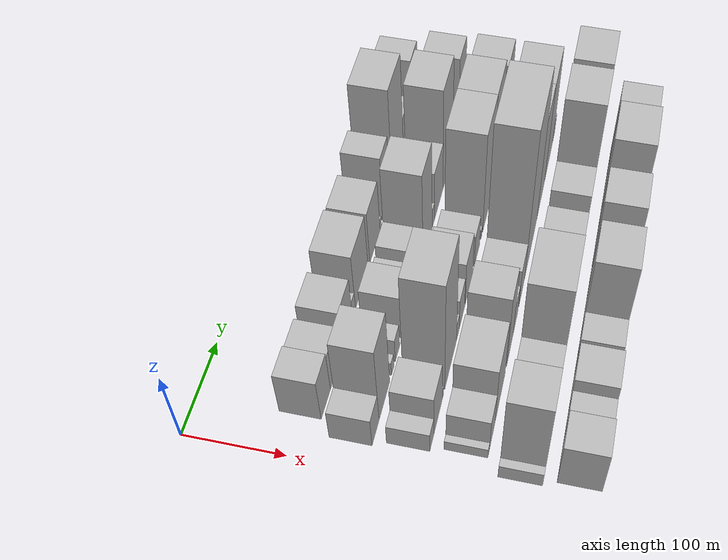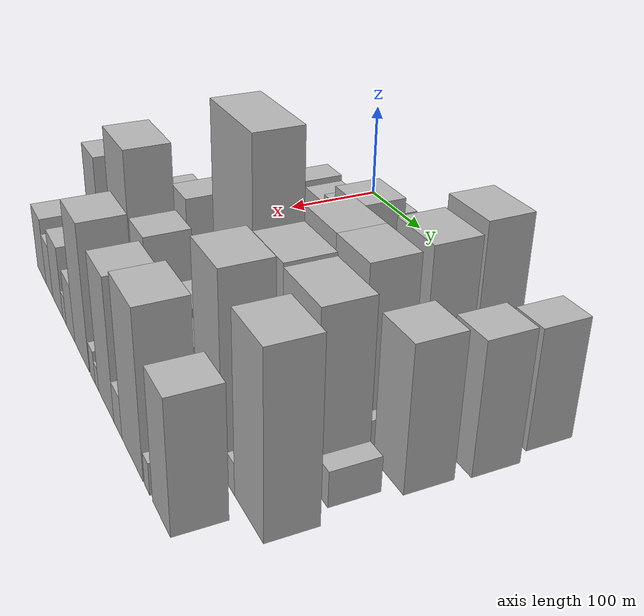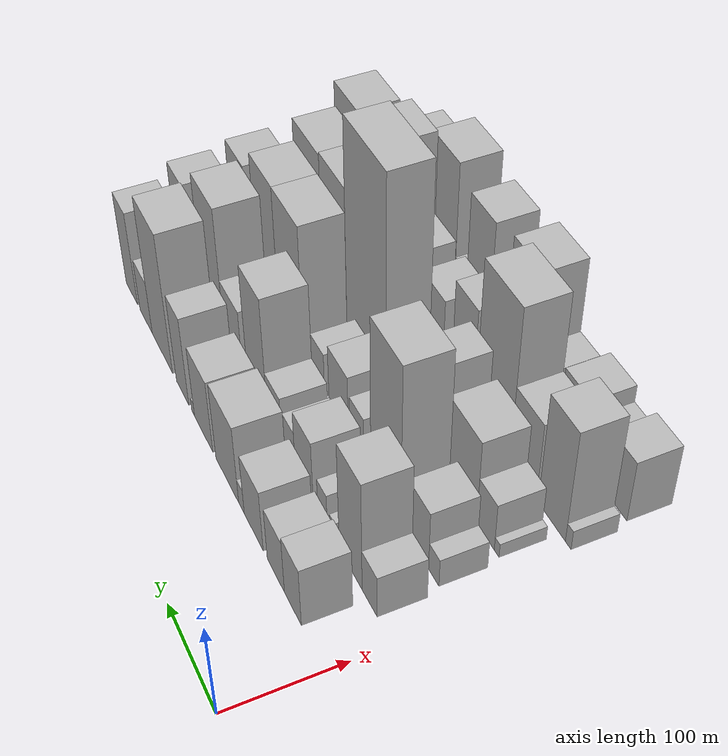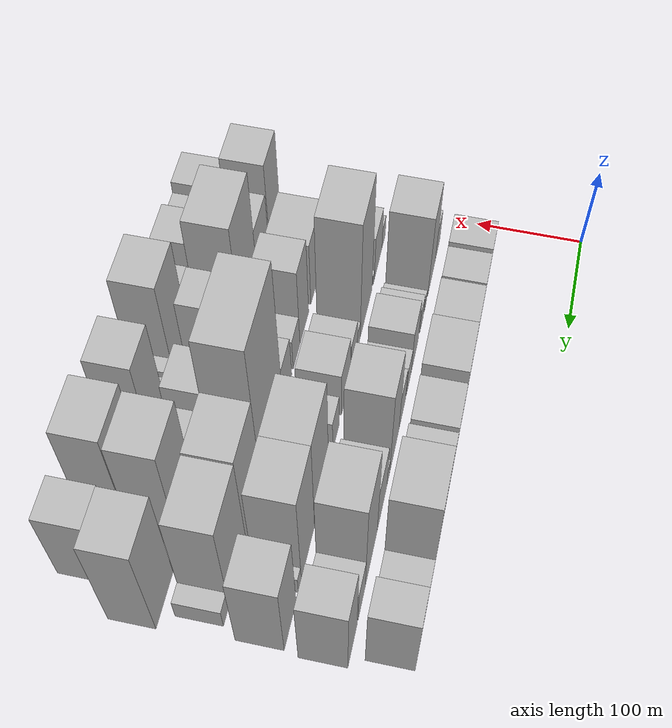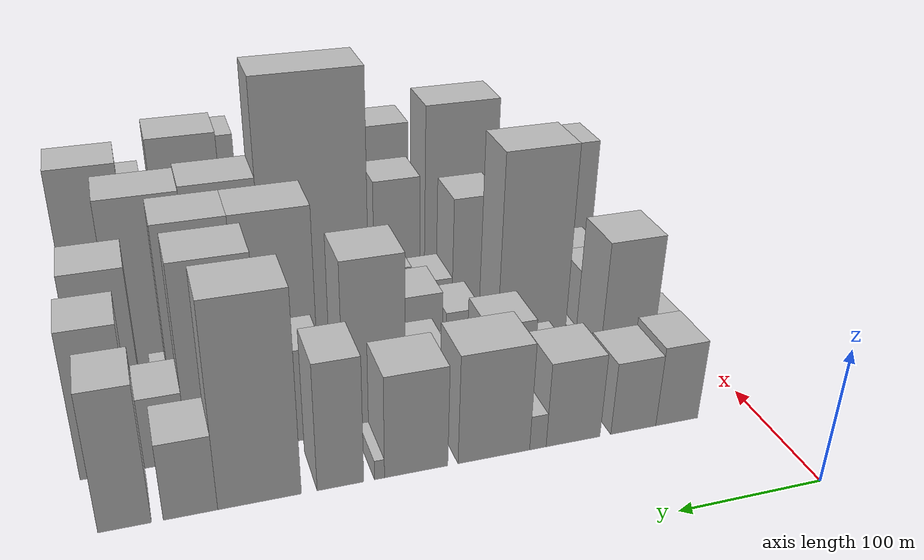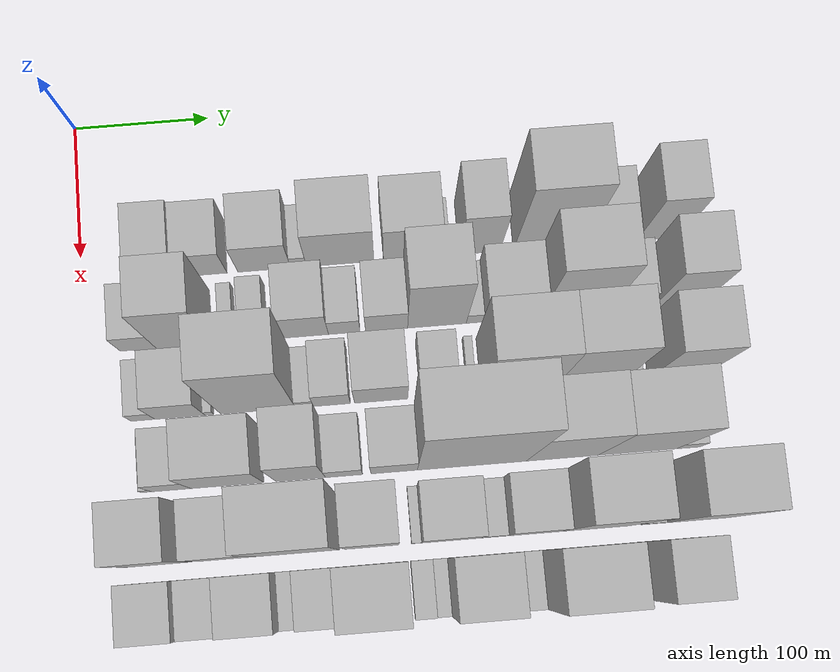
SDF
<sdf version="1.6">
 <world name="default">
  <model name="building_26">
   <static>1</static>
   <pose>100.0000 57.7635 0 0.000000 0.000000 0.000000</pose>
   <link name="link">
    <pose>0 0 31.50 0 0 0</pose>
    <collision name="collision"><geometry><box><size>40.0000 31.7774 63.0000</size></box></geometry></collision>
    <visual name="visual">
     <cast_shadows>0</cast_shadows>
     <geometry><box><size>40.0000 31.7774 63.0000</size></box></geometry>
     <material>
      <script>
       <uri>model://HANNAS_wall/materials/scripts</uri>
       <uri>model://HANNAS_wall/materials/textures</uri>
       <name>vrc/HANNAS_wall</name>
      </script>
     </material>
    </visual>
   </link>
  </model>
  <model name="building_27">
   <static>1</static>
   <pose>100.0000 90.3993 0 0.000000 0.000000 0.000000</pose>
   <link name="link">
    <pose>0 0 28.50 0 0 0</pose>
    <collision name="collision"><geometry><box><size>40.0000 33.4941 57.0000</size></box></geometry></collision>
    <visual name="visual">
     <cast_shadows>0</cast_shadows>
     <geometry><box><size>40.0000 33.4941 57.0000</size></box></geometry>
     <material>
      <script>
       <uri>model://HANNAS_wall/materials/scripts</uri>
       <uri>model://HANNAS_wall/materials/textures</uri>
       <name>vrc/HANNAS_wall</name>
      </script>
     </material>
    </visual>
   </link>
  </model>
  <model name="building_28">
   <static>1</static>
   <pose>100.0000 134.5882 0 0.000000 0.000000 0.000000</pose>
   <link name="link">
    <pose>0 0 33.00 0 0 0</pose>
    <collision name="collision"><geometry><box><size>40.0000 38.8838 66.0000</size></box></geometry></collision>
    <visual name="visual">
     <cast_shadows>0</cast_shadows>
     <geometry><box><size>40.0000 38.8838 66.0000</size></box></geometry>
     <material>
      <script>
       <uri>model://HANNAS_wall/materials/scripts</uri>
       <uri>model://HANNAS_wall/materials/textures</uri>
       <name>vrc/HANNAS_wall</name>
      </script>
     </material>
    </visual>
   </link>
  </model>
  <model name="building_29">
   <static>1</static>
   <pose>100.0000 159.8942 0 0.000000 0.000000 0.000000</pose>
   <link name="link">
    <pose>0 0 13.50 0 0 0</pose>
    <collision name="collision"><geometry><box><size>40.0000 11.7282 27.0000</size></box></geometry></collision>
    <visual name="visual">
     <cast_shadows>0</cast_shadows>
     <geometry><box><size>40.0000 11.7282 27.0000</size></box></geometry>
     <material>
      <script>
       <uri>model://HANNAS_wall/materials/scripts</uri>
       <uri>model://HANNAS_wall/materials/textures</uri>
       <name>vrc/HANNAS_wall</name>
      </script>
     </material>
    </visual>
   </link>
  </model>
  <model name="building_30">
   <static>1</static>
   <pose>100.0000 190.6563 0 0.000000 0.000000 0.000000</pose>
   <link name="link">
    <pose>0 0 42.00 0 0 0</pose>
    <collision name="collision"><geometry><box><size>40.0000 49.7961 84.0000</size></box></geometry></collision>
    <visual name="visual">
     <cast_shadows>0</cast_shadows>
     <geometry><box><size>40.0000 49.7961 84.0000</size></box></geometry>
     <material>
      <script>
       <uri>model://HANNAS_wall/materials/scripts</uri>
       <uri>model://HANNAS_wall/materials/textures</uri>
       <name>vrc/HANNAS_wall</name>
      </script>
     </material>
    </visual>
   </link>
  </model>
  <model name="building_31">
   <static>1</static>
   <pose>100.0000 243.7767 0 0.000000 0.000000 0.000000</pose>
   <link name="link">
    <pose>0 0 39.00 0 0 0</pose>
    <collision name="collision"><geometry><box><size>40.0000 42.4446 78.0000</size></box></geometry></collision>
    <visual name="visual">
     <cast_shadows>0</cast_shadows>
     <geometry><box><size>40.0000 42.4446 78.0000</size></box></geometry>
     <material>
      <script>
       <uri>model://HANNAS_wall/materials/scripts</uri>
       <uri>model://HANNAS_wall/materials/textures</uri>
       <name>vrc/HANNAS_wall</name>
      </script>
     </material>
    </visual>
   </link>
  </model>
  <model name="building_32">
   <static>1</static>
   <pose>100.0000 268.2766 0 0.000000 0.000000 0.000000</pose>
   <link name="link">
    <pose>0 0 7.50 0 0 0</pose>
    <collision name="collision"><geometry><box><size>40.0000 6.5552 15.0000</size></box></geometry></collision>
    <visual name="visual">
     <cast_shadows>0</cast_shadows>
     <geometry><box><size>40.0000 6.5552 15.0000</size></box></geometry>
     <material>
      <script>
       <uri>model://HANNAS_wall/materials/scripts</uri>
       <uri>model://HANNAS_wall/materials/textures</uri>
       <name>vrc/HANNAS_wall</name>
      </script>
     </material>
    </visual>
   </link>
  </model>
  <model name="building_33">
   <static>1</static>
   <pose>100.0000 293.6610 0 0.000000 0.000000 0.000000</pose>
   <link name="link">
    <pose>0 0 48.00 0 0 0</pose>
    <collision name="collision"><geometry><box><size>40.0000 30.2137 96.0000</size></box></geometry></collision>
    <visual name="visual">
     <cast_shadows>0</cast_shadows>
     <geometry><box><size>40.0000 30.2137 96.0000</size></box></geometry>
     <material>
      <script>
       <uri>model://HANNAS_wall/materials/scripts</uri>
       <uri>model://HANNAS_wall/materials/textures</uri>
       <name>vrc/HANNAS_wall</name>
      </script>
     </material>
    </visual>
   </link>
  </model>
  <model name="building_34">
   <static>1</static>
   <pose>100.0000 344.8513 0 0.000000 0.000000 0.000000</pose>
   <link name="link">
    <pose>0 0 75.00 0 0 0</pose>
    <collision name="collision"><geometry><box><size>40.0000 52.1668 150.0000</size></box></geometry></collision>
    <visual name="visual">
     <cast_shadows>0</cast_shadows>
     <geometry><box><size>40.0000 52.1668 150.0000</size></box></geometry>
     <material>
      <script>
       <uri>model://HANNAS_wall/materials/scripts</uri>
       <uri>model://HANNAS_wall/materials/textures</uri>
       <name>vrc/HANNAS_wall</name>
      </script>
     </material>
    </visual>
   </link>
  </model>
  <model name="building_35">
   <static>1</static>
   <pose>100.0000 387.3853 0 0.000000 0.000000 0.000000</pose>
   <link name="link">
    <pose>0 0 28.50 0 0 0</pose>
    <collision name="collision"><geometry><box><size>40.0000 32.9012 57.0000</size></box></geometry></collision>
    <visual name="visual">
     <cast_shadows>0</cast_shadows>
     <geometry><box><size>40.0000 32.9012 57.0000</size></box></geometry>
     <material>
      <script>
       <uri>model://HANNAS_wall/materials/scripts</uri>
       <uri>model://HANNAS_wall/materials/textures</uri>
       <name>vrc/HANNAS_wall</name>
      </script>
     </material>
    </visual>
   </link>
  </model>
  <model name="building_36">
   <static>1</static>
   <pose>100.0000 426.6326 0 0.000000 0.000000 0.000000</pose>
   <link name="link">
    <pose>0 0 51.00 0 0 0</pose>
    <collision name="collision"><geometry><box><size>40.0000 31.5933 102.0000</size></box></geometry></collision>
    <visual name="visual">
     <cast_shadows>0</cast_shadows>
     <geometry><box><size>40.0000 31.5933 102.0000</size></box></geometry>
     <material>
      <script>
       <uri>model://HANNAS_wall/materials/scripts</uri>
       <uri>model://HANNAS_wall/materials/textures</uri>
       <name>vrc/HANNAS_wall</name>
      </script>
     </material>
    </visual>
   </link>
  </model>
  <model name="building_69">
   <static>1</static>
   <pose>152.0000 39.0133 0 0.000000 0.000000 0.000000</pose>
   <link name="link">
    <pose>0 0 22.50 0 0 0</pose>
    <collision name="collision"><geometry><box><size>40.0000 26.2181 45.0000</size></box></geometry></collision>
    <visual name="visual">
     <cast_shadows>0</cast_shadows>
     <geometry><box><size>40.0000 26.2181 45.0000</size></box></geometry>
     <material>
      <script>
       <uri>model://HANNAS_wall/materials/scripts</uri>
       <uri>model://HANNAS_wall/materials/textures</uri>
       <name>vrc/HANNAS_wall</name>
      </script>
     </material>
    </visual>
   </link>
  </model>
  <model name="building_70">
   <static>1</static>
   <pose>152.0000 72.6944 0 0.000000 0.000000 0.000000</pose>
   <link name="link">
    <pose>0 0 58.50 0 0 0</pose>
    <collision name="collision"><geometry><box><size>40.0000 41.1441 117.0000</size></box></geometry></collision>
    <visual name="visual">
     <cast_shadows>0</cast_shadows>
     <geometry><box><size>40.0000 41.1441 117.0000</size></box></geometry>
     <material>
      <script>
       <uri>model://HANNAS_wall/materials/scripts</uri>
       <uri>model://HANNAS_wall/materials/textures</uri>
       <name>vrc/HANNAS_wall</name>
      </script>
     </material>
    </visual>
   </link>
  </model>
  <model name="building_71">
   <static>1</static>
   <pose>152.0000 105.4673 0 0.000000 0.000000 0.000000</pose>
   <link name="link">
    <pose>0 0 10.50 0 0 0</pose>
    <collision name="collision"><geometry><box><size>40.0000 10.4016 21.0000</size></box></geometry></collision>
    <visual name="visual">
     <cast_shadows>0</cast_shadows>
     <geometry><box><size>40.0000 10.4016 21.0000</size></box></geometry>
     <material>
      <script>
       <uri>model://HANNAS_wall/materials/scripts</uri>
       <uri>model://HANNAS_wall/materials/textures</uri>
       <name>vrc/HANNAS_wall</name>
      </script>
     </material>
    </visual>
   </link>
  </model>
  <model name="building_72">
   <static>1</static>
   <pose>152.0000 124.7403 0 0.000000 0.000000 0.000000</pose>
   <link name="link">
    <pose>0 0 18.00 0 0 0</pose>
    <collision name="collision"><geometry><box><size>40.0000 18.1444 36.0000</size></box></geometry></collision>
    <visual name="visual">
     <cast_shadows>0</cast_shadows>
     <geometry><box><size>40.0000 18.1444 36.0000</size></box></geometry>
     <material>
      <script>
       <uri>model://HANNAS_wall/materials/scripts</uri>
       <uri>model://HANNAS_wall/materials/textures</uri>
       <name>vrc/HANNAS_wall</name>
      </script>
     </material>
    </visual>
   </link>
  </model>
  <model name="building_73">
   <static>1</static>
   <pose>152.0000 160.4949 0 0.000000 0.000000 0.000000</pose>
   <link name="link">
    <pose>0 0 33.00 0 0 0</pose>
    <collision name="collision"><geometry><box><size>40.0000 35.3648 66.0000</size></box></geometry></collision>
    <visual name="visual">
     <cast_shadows>0</cast_shadows>
     <geometry><box><size>40.0000 35.3648 66.0000</size></box></geometry>
     <material>
      <script>
       <uri>model://HANNAS_wall/materials/scripts</uri>
       <uri>model://HANNAS_wall/materials/textures</uri>
       <name>vrc/HANNAS_wall</name>
      </script>
     </material>
    </visual>
   </link>
  </model>
  <model name="building_74">
   <static>1</static>
   <pose>152.0000 189.7388 0 0.000000 0.000000 0.000000</pose>
   <link name="link">
    <pose>0 0 21.00 0 0 0</pose>
    <collision name="collision"><geometry><box><size>40.0000 23.1231 42.0000</size></box></geometry></collision>
    <visual name="visual">
     <cast_shadows>0</cast_shadows>
     <geometry><box><size>40.0000 23.1231 42.0000</size></box></geometry>
     <material>
      <script>
       <uri>model://HANNAS_wall/materials/scripts</uri>
       <uri>model://HANNAS_wall/materials/textures</uri>
       <name>vrc/HANNAS_wall</name>
      </script>
     </material>
    </visual>
   </link>
  </model>
  <model name="building_75">
   <static>1</static>
   <pose>152.0000 220.7002 0 0.000000 0.000000 0.000000</pose>
   <link name="link">
    <pose>0 0 27.00 0 0 0</pose>
    <collision name="collision"><geometry><box><size>40.0000 30.7996 54.0000</size></box></geometry></collision>
    <visual name="visual">
     <cast_shadows>0</cast_shadows>
     <geometry><box><size>40.0000 30.7996 54.0000</size></box></geometry>
     <material>
      <script>
       <uri>model://HANNAS_wall/materials/scripts</uri>
       <uri>model://HANNAS_wall/materials/textures</uri>
       <name>vrc/HANNAS_wall</name>
      </script>
     </material>
    </visual>
   </link>
  </model>
  <model name="building_76">
   <static>1</static>
   <pose>152.0000 257.5611 0 0.000000 0.000000 0.000000</pose>
   <link name="link">
    <pose>0 0 66.00 0 0 0</pose>
    <collision name="collision"><geometry><box><size>40.0000 42.9223 132.0000</size></box></geometry></collision>
    <visual name="visual">
     <cast_shadows>0</cast_shadows>
     <geometry><box><size>40.0000 42.9223 132.0000</size></box></geometry>
     <material>
      <script>
       <uri>model://HANNAS_wall/materials/scripts</uri>
       <uri>model://HANNAS_wall/materials/textures</uri>
       <name>vrc/HANNAS_wall</name>
      </script>
     </material>
    </visual>
   </link>
  </model>
  <model name="building_77">
   <static>1</static>
   <pose>152.0000 285.0619 0 0.000000 0.000000 0.000000</pose>
   <link name="link">
    <pose>0 0 13.50 0 0 0</pose>
    <collision name="collision"><geometry><box><size>40.0000 12.0793 27.0000</size></box></geometry></collision>
    <visual name="visual">
     <cast_shadows>0</cast_shadows>
     <geometry><box><size>40.0000 12.0793 27.0000</size></box></geometry>
     <material>
      <script>
       <uri>model://HANNAS_wall/materials/scripts</uri>
       <uri>model://HANNAS_wall/materials/textures</uri>
       <name>vrc/HANNAS_wall</name>
      </script>
     </material>
    </visual>
   </link>
  </model>
  <model name="building_78">
   <static>1</static>
   <pose>152.0000 311.9442 0 0.000000 0.000000 0.000000</pose>
   <link name="link">
    <pose>0 0 36.00 0 0 0</pose>
    <collision name="collision"><geometry><box><size>40.0000 41.6852 72.0000</size></box></geometry></collision>
    <visual name="visual">
     <cast_shadows>0</cast_shadows>
     <geometry><box><size>40.0000 41.6852 72.0000</size></box></geometry>
     <material>
      <script>
       <uri>model://HANNAS_wall/materials/scripts</uri>
       <uri>model://HANNAS_wall/materials/textures</uri>
       <name>vrc/HANNAS_wall</name>
      </script>
     </material>
    </visual>
   </link>
  </model>
  <model name="building_79">
   <static>1</static>
   <pose>152.0000 357.8503 0 0.000000 0.000000 0.000000</pose>
   <link name="link">
    <pose>0 0 73.50 0 0 0</pose>
    <collision name="collision"><geometry><box><size>40.0000 50.1271 147.0000</size></box></geometry></collision>
    <visual name="visual">
     <cast_shadows>0</cast_shadows>
     <geometry><box><size>40.0000 50.1271 147.0000</size></box></geometry>
     <material>
      <script>
       <uri>model://HANNAS_wall/materials/scripts</uri>
       <uri>model://HANNAS_wall/materials/textures</uri>
       <name>vrc/HANNAS_wall</name>
      </script>
     </material>
    </visual>
   </link>
  </model>
  <model name="building_80">
   <static>1</static>
   <pose>152.0000 397.2267 0 0.000000 0.000000 0.000000</pose>
   <link name="link">
    <pose>0 0 27.00 0 0 0</pose>
    <collision name="collision"><geometry><box><size>40.0000 28.6257 54.0000</size></box></geometry></collision>
    <visual name="visual">
     <cast_shadows>0</cast_shadows>
     <geometry><box><size>40.0000 28.6257 54.0000</size></box></geometry>
     <material>
      <script>
       <uri>model://HANNAS_wall/materials/scripts</uri>
       <uri>model://HANNAS_wall/materials/textures</uri>
       <name>vrc/HANNAS_wall</name>
      </script>
     </material>
    </visual>
   </link>
  </model>
  <model name="building_81">
   <static>1</static>
   <pose>152.0000 433.4288 0 0.000000 0.000000 0.000000</pose>
   <link name="link">
    <pose>0 0 55.50 0 0 0</pose>
    <collision name="collision"><geometry><box><size>40.0000 35.7785 111.0000</size></box></geometry></collision>
    <visual name="visual">
     <cast_shadows>0</cast_shadows>
     <geometry><box><size>40.0000 35.7785 111.0000</size></box></geometry>
     <material>
      <script>
       <uri>model://HANNAS_wall/materials/scripts</uri>
       <uri>model://HANNAS_wall/materials/textures</uri>
       <name>vrc/HANNAS_wall</name>
      </script>
     </material>
    </visual>
   </link>
  </model>
  <model name="building_123">
   <static>1</static>
   <pose>204.0000 39.9931 0 0.000000 0.000000 0.000000</pose>
   <link name="link">
    <pose>0 0 15.00 0 0 0</pose>
    <collision name="collision"><geometry><box><size>40.0000 17.1262 30.0000</size></box></geometry></collision>
    <visual name="visual">
     <cast_shadows>0</cast_shadows>
     <geometry><box><size>40.0000 17.1262 30.0000</size></box></geometry>
     <material>
      <script>
       <uri>model://HANNAS_wall/materials/scripts</uri>
       <uri>model://HANNAS_wall/materials/textures</uri>
       <name>vrc/HANNAS_wall</name>
      </script>
     </material>
    </visual>
   </link>
  </model>
  <model name="building_124">
   <static>1</static>
   <pose>204.0000 66.6481 0 0.000000 0.000000 0.000000</pose>
   <link name="link">
    <pose>0 0 31.50 0 0 0</pose>
    <collision name="collision"><geometry><box><size>40.0000 36.1836 63.0000</size></box></geometry></collision>
    <visual name="visual">
     <cast_shadows>0</cast_shadows>
     <geometry><box><size>40.0000 36.1836 63.0000</size></box></geometry>
     <material>
      <script>
       <uri>model://HANNAS_wall/materials/scripts</uri>
       <uri>model://HANNAS_wall/materials/textures</uri>
       <name>vrc/HANNAS_wall</name>
      </script>
     </material>
    </visual>
   </link>
  </model>
  <model name="building_125">
   <static>1</static>
   <pose>204.0000 87.9606 0 0.000000 0.000000 0.000000</pose>
   <link name="link">
    <pose>0 0 7.50 0 0 0</pose>
    <collision name="collision"><geometry><box><size>40.0000 6.4415 15.0000</size></box></geometry></collision>
    <visual name="visual">
     <cast_shadows>0</cast_shadows>
     <geometry><box><size>40.0000 6.4415 15.0000</size></box></geometry>
     <material>
      <script>
       <uri>model://HANNAS_wall/materials/scripts</uri>
       <uri>model://HANNAS_wall/materials/textures</uri>
       <name>vrc/HANNAS_wall</name>
      </script>
     </material>
    </visual>
   </link>
  </model>
  <model name="building_126">
   <static>1</static>
   <pose>204.0000 123.3204 0 0.000000 0.000000 0.000000</pose>
   <link name="link">
    <pose>0 0 84.00 0 0 0</pose>
    <collision name="collision"><geometry><box><size>40.0000 54.2782 168.0000</size></box></geometry></collision>
    <visual name="visual">
     <cast_shadows>0</cast_shadows>
     <geometry><box><size>40.0000 54.2782 168.0000</size></box></geometry>
     <material>
      <script>
       <uri>model://HANNAS_wall/materials/scripts</uri>
       <uri>model://HANNAS_wall/materials/textures</uri>
       <name>vrc/HANNAS_wall</name>
      </script>
     </material>
    </visual>
   </link>
  </model>
  <model name="building_127">
   <static>1</static>
   <pose>204.0000 156.9671 0 0.000000 0.000000 0.000000</pose>
   <link name="link">
    <pose>0 0 13.50 0 0 0</pose>
    <collision name="collision"><geometry><box><size>40.0000 13.0151 27.0000</size></box></geometry></collision>
    <visual name="visual">
     <cast_shadows>0</cast_shadows>
     <geometry><box><size>40.0000 13.0151 27.0000</size></box></geometry>
     <material>
      <script>
       <uri>model://HANNAS_wall/materials/scripts</uri>
       <uri>model://HANNAS_wall/materials/textures</uri>
       <name>vrc/HANNAS_wall</name>
      </script>
     </material>
    </visual>
   </link>
  </model>
  <model name="building_128">
   <static>1</static>
   <pose>204.0000 176.8619 0 0.000000 0.000000 0.000000</pose>
   <link name="link">
    <pose>0 0 24.00 0 0 0</pose>
    <collision name="collision"><geometry><box><size>40.0000 26.7745 48.0000</size></box></geometry></collision>
    <visual name="visual">
     <cast_shadows>0</cast_shadows>
     <geometry><box><size>40.0000 26.7745 48.0000</size></box></geometry>
     <material>
      <script>
       <uri>model://HANNAS_wall/materials/scripts</uri>
       <uri>model://HANNAS_wall/materials/textures</uri>
       <name>vrc/HANNAS_wall</name>
      </script>
     </material>
    </visual>
   </link>
  </model>
  <model name="building_129">
   <static>1</static>
   <pose>204.0000 212.5238 0 0.000000 0.000000 0.000000</pose>
   <link name="link">
    <pose>0 0 33.00 0 0 0</pose>
    <collision name="collision"><geometry><box><size>40.0000 38.5494 66.0000</size></box></geometry></collision>
    <visual name="visual">
     <cast_shadows>0</cast_shadows>
     <geometry><box><size>40.0000 38.5494 66.0000</size></box></geometry>
     <material>
      <script>
       <uri>model://HANNAS_wall/materials/scripts</uri>
       <uri>model://HANNAS_wall/materials/textures</uri>
       <name>vrc/HANNAS_wall</name>
      </script>
     </material>
    </visual>
   </link>
  </model>
  <model name="building_130">
   <static>1</static>
   <pose>204.0000 254.3857 0 0.000000 0.000000 0.000000</pose>
   <link name="link">
    <pose>0 0 24.00 0 0 0</pose>
    <collision name="collision"><geometry><box><size>40.0000 27.1744 48.0000</size></box></geometry></collision>
    <visual name="visual">
     <cast_shadows>0</cast_shadows>
     <geometry><box><size>40.0000 27.1744 48.0000</size></box></geometry>
     <material>
      <script>
       <uri>model://HANNAS_wall/materials/scripts</uri>
       <uri>model://HANNAS_wall/materials/textures</uri>
       <name>vrc/HANNAS_wall</name>
      </script>
     </material>
    </visual>
   </link>
  </model>
  <model name="building_131">
   <static>1</static>
   <pose>204.0000 278.0805 0 0.000000 0.000000 0.000000</pose>
   <link name="link">
    <pose>0 0 7.50 0 0 0</pose>
    <collision name="collision"><geometry><box><size>40.0000 6.2152 15.0000</size></box></geometry></collision>
    <visual name="visual">
     <cast_shadows>0</cast_shadows>
     <geometry><box><size>40.0000 6.2152 15.0000</size></box></geometry>
     <material>
      <script>
       <uri>model://HANNAS_wall/materials/scripts</uri>
       <uri>model://HANNAS_wall/materials/textures</uri>
       <name>vrc/HANNAS_wall</name>
      </script>
     </material>
    </visual>
   </link>
  </model>
  <model name="building_132">
   <static>1</static>
   <pose>204.0000 312.2605 0 0.000000 0.000000 0.000000</pose>
   <link name="link">
    <pose>0 0 73.50 0 0 0</pose>
    <collision name="collision"><geometry><box><size>40.0000 54.1449 147.0000</size></box></geometry></collision>
    <visual name="visual">
     <cast_shadows>0</cast_shadows>
     <geometry><box><size>40.0000 54.1449 147.0000</size></box></geometry>
     <material>
      <script>
       <uri>model://HANNAS_wall/materials/scripts</uri>
       <uri>model://HANNAS_wall/materials/textures</uri>
       <name>vrc/HANNAS_wall</name>
      </script>
     </material>
    </visual>
   </link>
  </model>
  <model name="building_133">
   <static>1</static>
   <pose>204.0000 363.5900 0 0.000000 0.000000 0.000000</pose>
   <link name="link">
    <pose>0 0 73.50 0 0 0</pose>
    <collision name="collision"><geometry><box><size>40.0000 48.5142 147.0000</size></box></geometry></collision>
    <visual name="visual">
     <cast_shadows>0</cast_shadows>
     <geometry><box><size>40.0000 48.5142 147.0000</size></box></geometry>
     <material>
      <script>
       <uri>model://HANNAS_wall/materials/scripts</uri>
       <uri>model://HANNAS_wall/materials/textures</uri>
       <name>vrc/HANNAS_wall</name>
      </script>
     </material>
    </visual>
   </link>
  </model>
  <model name="building_134">
   <static>1</static>
   <pose>204.0000 393.3172 0 0.000000 0.000000 0.000000</pose>
   <link name="link">
    <pose>0 0 13.50 0 0 0</pose>
    <collision name="collision"><geometry><box><size>40.0000 10.9402 27.0000</size></box></geometry></collision>
    <visual name="visual">
     <cast_shadows>0</cast_shadows>
     <geometry><box><size>40.0000 10.9402 27.0000</size></box></geometry>
     <material>
      <script>
       <uri>model://HANNAS_wall/materials/scripts</uri>
       <uri>model://HANNAS_wall/materials/textures</uri>
       <name>vrc/HANNAS_wall</name>
      </script>
     </material>
    </visual>
   </link>
  </model>
  <model name="building_135">
   <static>1</static>
   <pose>204.0000 427.4362 0 0.000000 0.000000 0.000000</pose>
   <link name="link">
    <pose>0 0 60.00 0 0 0</pose>
    <collision name="collision"><geometry><box><size>40.0000 41.2978 120.0000</size></box></geometry></collision>
    <visual name="visual">
     <cast_shadows>0</cast_shadows>
     <geometry><box><size>40.0000 41.2978 120.0000</size></box></geometry>
     <material>
      <script>
       <uri>model://HANNAS_wall/materials/scripts</uri>
       <uri>model://HANNAS_wall/materials/textures</uri>
       <name>vrc/HANNAS_wall</name>
      </script>
     </material>
    </visual>
   </link>
  </model>
  <model name="building_170">
   <static>1</static>
   <pose>256.0000 39.9478 0 0.000000 0.000000 0.000000</pose>
   <link name="link">
    <pose>0 0 7.50 0 0 0</pose>
    <collision name="collision"><geometry><box><size>40.0000 7.4678 15.0000</size></box></geometry></collision>
    <visual name="visual">
     <cast_shadows>0</cast_shadows>
     <geometry><box><size>40.0000 7.4678 15.0000</size></box></geometry>
     <material>
      <script>
       <uri>model://HANNAS_wall/materials/scripts</uri>
       <uri>model://HANNAS_wall/materials/textures</uri>
       <name>vrc/HANNAS_wall</name>
      </script>
     </material>
    </visual>
   </link>
  </model>
  <model name="building_171">
   <static>1</static>
   <pose>256.0000 57.7739 0 0.000000 0.000000 0.000000</pose>
   <link name="link">
    <pose>0 0 25.50 0 0 0</pose>
    <collision name="collision"><geometry><box><size>40.0000 28.1845 51.0000</size></box></geometry></collision>
    <visual name="visual">
     <cast_shadows>0</cast_shadows>
     <geometry><box><size>40.0000 28.1845 51.0000</size></box></geometry>
     <material>
      <script>
       <uri>model://HANNAS_wall/materials/scripts</uri>
       <uri>model://HANNAS_wall/materials/textures</uri>
       <name>vrc/HANNAS_wall</name>
      </script>
     </material>
    </visual>
   </link>
  </model>
  <model name="building_172">
   <static>1</static>
   <pose>256.0000 97.9400 0 0.000000 0.000000 0.000000</pose>
   <link name="link">
    <pose>0 0 45.00 0 0 0</pose>
    <collision name="collision"><geometry><box><size>40.0000 52.1477 90.0000</size></box></geometry></collision>
    <visual name="visual">
     <cast_shadows>0</cast_shadows>
     <geometry><box><size>40.0000 52.1477 90.0000</size></box></geometry>
     <material>
      <script>
       <uri>model://HANNAS_wall/materials/scripts</uri>
       <uri>model://HANNAS_wall/materials/textures</uri>
       <name>vrc/HANNAS_wall</name>
      </script>
     </material>
    </visual>
   </link>
  </model>
  <model name="building_173">
   <static>1</static>
   <pose>256.0000 150.7555 0 0.000000 0.000000 0.000000</pose>
   <link name="link">
    <pose>0 0 55.50 0 0 0</pose>
    <collision name="collision"><geometry><box><size>40.0000 35.4832 111.0000</size></box></geometry></collision>
    <visual name="visual">
     <cast_shadows>0</cast_shadows>
     <geometry><box><size>40.0000 35.4832 111.0000</size></box></geometry>
     <material>
      <script>
       <uri>model://HANNAS_wall/materials/scripts</uri>
       <uri>model://HANNAS_wall/materials/textures</uri>
       <name>vrc/HANNAS_wall</name>
      </script>
     </material>
    </visual>
   </link>
  </model>
  <model name="building_174">
   <static>1</static>
   <pose>256.0000 181.7886 0 0.000000 0.000000 0.000000</pose>
   <link name="link">
    <pose>0 0 22.50 0 0 0</pose>
    <collision name="collision"><geometry><box><size>40.0000 26.5829 45.0000</size></box></geometry></collision>
    <visual name="visual">
     <cast_shadows>0</cast_shadows>
     <geometry><box><size>40.0000 26.5829 45.0000</size></box></geometry>
     <material>
      <script>
       <uri>model://HANNAS_wall/materials/scripts</uri>
       <uri>model://HANNAS_wall/materials/textures</uri>
       <name>vrc/HANNAS_wall</name>
      </script>
     </material>
    </visual>
   </link>
  </model>
  <model name="building_175">
   <static>1</static>
   <pose>256.0000 217.7363 0 0.000000 0.000000 0.000000</pose>
   <link name="link">
    <pose>0 0 30.00 0 0 0</pose>
    <collision name="collision"><geometry><box><size>40.0000 33.3126 60.0000</size></box></geometry></collision>
    <visual name="visual">
     <cast_shadows>0</cast_shadows>
     <geometry><box><size>40.0000 33.3126 60.0000</size></box></geometry>
     <material>
      <script>
       <uri>model://HANNAS_wall/materials/scripts</uri>
       <uri>model://HANNAS_wall/materials/textures</uri>
       <name>vrc/HANNAS_wall</name>
      </script>
     </material>
    </visual>
   </link>
  </model>
  <model name="building_176">
   <static>1</static>
   <pose>256.0000 273.7536 0 0.000000 0.000000 0.000000</pose>
   <link name="link">
    <pose>0 0 109.50 0 0 0</pose>
    <collision name="collision"><geometry><box><size>40.0000 78.7221 219.0000</size></box></geometry></collision>
    <visual name="visual">
     <cast_shadows>0</cast_shadows>
     <geometry><box><size>40.0000 78.7221 219.0000</size></box></geometry>
     <material>
      <script>
       <uri>model://HANNAS_wall/materials/scripts</uri>
       <uri>model://HANNAS_wall/materials/textures</uri>
       <name>vrc/HANNAS_wall</name>
      </script>
     </material>
    </visual>
   </link>
  </model>
  <model name="building_177">
   <static>1</static>
   <pose>256.0000 339.0817 0 0.000000 0.000000 0.000000</pose>
   <link name="link">
    <pose>0 0 73.50 0 0 0</pose>
    <collision name="collision"><geometry><box><size>40.0000 51.9339 147.0000</size></box></geometry></collision>
    <visual name="visual">
     <cast_shadows>0</cast_shadows>
     <geometry><box><size>40.0000 51.9339 147.0000</size></box></geometry>
     <material>
      <script>
       <uri>model://HANNAS_wall/materials/scripts</uri>
       <uri>model://HANNAS_wall/materials/textures</uri>
       <name>vrc/HANNAS_wall</name>
      </script>
     </material>
    </visual>
   </link>
  </model>
  <model name="building_178">
   <static>1</static>
   <pose>256.0000 393.2322 0 0.000000 0.000000 0.000000</pose>
   <link name="link">
    <pose>0 0 72.00 0 0 0</pose>
    <collision name="collision"><geometry><box><size>40.0000 56.3672 144.0000</size></box></geometry></collision>
    <visual name="visual">
     <cast_shadows>0</cast_shadows>
     <geometry><box><size>40.0000 56.3672 144.0000</size></box></geometry>
     <material>
      <script>
       <uri>model://HANNAS_wall/materials/scripts</uri>
       <uri>model://HANNAS_wall/materials/textures</uri>
       <name>vrc/HANNAS_wall</name>
      </script>
     </material>
    </visual>
   </link>
  </model>
  <model name="building_179">
   <static>1</static>
   <pose>256.0000 430.1611 0 0.000000 0.000000 0.000000</pose>
   <link name="link">
    <pose>0 0 15.00 0 0 0</pose>
    <collision name="collision"><geometry><box><size>40.0000 17.4907 30.0000</size></box></geometry></collision>
    <visual name="visual">
     <cast_shadows>0</cast_shadows>
     <geometry><box><size>40.0000 17.4907 30.0000</size></box></geometry>
     <material>
      <script>
       <uri>model://HANNAS_wall/materials/scripts</uri>
       <uri>model://HANNAS_wall/materials/textures</uri>
       <name>vrc/HANNAS_wall</name>
      </script>
     </material>
    </visual>
   </link>
  </model>
  <model name="building_215">
   <static>1</static>
   <pose>308.0000 24.3256 0 0.000000 0.000000 0.000000</pose>
   <link name="link">
    <pose>0 0 10.50 0 0 0</pose>
    <collision name="collision"><geometry><box><size>40.0000 8.4529 21.0000</size></box></geometry></collision>
    <visual name="visual">
     <cast_shadows>0</cast_shadows>
     <geometry><box><size>40.0000 8.4529 21.0000</size></box></geometry>
     <material>
      <script>
       <uri>model://HANNAS_wall/materials/scripts</uri>
       <uri>model://HANNAS_wall/materials/textures</uri>
       <name>vrc/HANNAS_wall</name>
      </script>
     </material>
    </visual>
   </link>
  </model>
  <model name="building_216">
   <static>1</static>
   <pose>308.0000 49.2310 0 0.000000 0.000000 0.000000</pose>
   <link name="link">
    <pose>0 0 60.00 0 0 0</pose>
    <collision name="collision"><geometry><box><size>40.0000 41.3578 120.0000</size></box></geometry></collision>
    <visual name="visual">
     <cast_shadows>0</cast_shadows>
     <geometry><box><size>40.0000 41.3578 120.0000</size></box></geometry>
     <material>
      <script>
       <uri>model://HANNAS_wall/materials/scripts</uri>
       <uri>model://HANNAS_wall/materials/textures</uri>
       <name>vrc/HANNAS_wall</name>
      </script>
     </material>
    </visual>
   </link>
  </model>
  <model name="building_217">
   <static>1</static>
   <pose>308.0000 94.1140 0 0.000000 0.000000 0.000000</pose>
   <link name="link">
    <pose>0 0 42.00 0 0 0</pose>
    <collision name="collision"><geometry><box><size>40.0000 42.4082 84.0000</size></box></geometry></collision>
    <visual name="visual">
     <cast_shadows>0</cast_shadows>
     <geometry><box><size>40.0000 42.4082 84.0000</size></box></geometry>
     <material>
      <script>
       <uri>model://HANNAS_wall/materials/scripts</uri>
       <uri>model://HANNAS_wall/materials/textures</uri>
       <name>vrc/HANNAS_wall</name>
      </script>
     </material>
    </visual>
   </link>
  </model>
  <model name="building_218">
   <static>1</static>
   <pose>308.0000 145.0527 0 0.000000 0.000000 0.000000</pose>
   <link name="link">
    <pose>0 0 82.50 0 0 0</pose>
    <collision name="collision"><geometry><box><size>40.0000 59.4692 165.0000</size></box></geometry></collision>
    <visual name="visual">
     <cast_shadows>0</cast_shadows>
     <geometry><box><size>40.0000 59.4692 165.0000</size></box></geometry>
     <material>
      <script>
       <uri>model://HANNAS_wall/materials/scripts</uri>
       <uri>model://HANNAS_wall/materials/textures</uri>
       <name>vrc/HANNAS_wall</name>
      </script>
     </material>
    </visual>
   </link>
  </model>
  <model name="building_219">
   <static>1</static>
   <pose>308.0000 197.7988 0 0.000000 0.000000 0.000000</pose>
   <link name="link">
    <pose>0 0 54.00 0 0 0</pose>
    <collision name="collision"><geometry><box><size>40.0000 38.0230 108.0000</size></box></geometry></collision>
    <visual name="visual">
     <cast_shadows>0</cast_shadows>
     <geometry><box><size>40.0000 38.0230 108.0000</size></box></geometry>
     <material>
      <script>
       <uri>model://HANNAS_wall/materials/scripts</uri>
       <uri>model://HANNAS_wall/materials/textures</uri>
       <name>vrc/HANNAS_wall</name>
      </script>
     </material>
    </visual>
   </link>
  </model>
  <model name="building_220">
   <static>1</static>
   <pose>308.0000 229.3192 0 0.000000 0.000000 0.000000</pose>
   <link name="link">
    <pose>0 0 7.50 0 0 0</pose>
    <collision name="collision"><geometry><box><size>40.0000 7.0178 15.0000</size></box></geometry></collision>
    <visual name="visual">
     <cast_shadows>0</cast_shadows>
     <geometry><box><size>40.0000 7.0178 15.0000</size></box></geometry>
     <material>
      <script>
       <uri>model://HANNAS_wall/materials/scripts</uri>
       <uri>model://HANNAS_wall/materials/textures</uri>
       <name>vrc/HANNAS_wall</name>
      </script>
     </material>
    </visual>
   </link>
  </model>
  <model name="building_221">
   <static>1</static>
   <pose>308.0000 254.3008 0 0.000000 0.000000 0.000000</pose>
   <link name="link">
    <pose>0 0 36.00 0 0 0</pose>
    <collision name="collision"><geometry><box><size>40.0000 42.9456 72.0000</size></box></geometry></collision>
    <visual name="visual">
     <cast_shadows>0</cast_shadows>
     <geometry><box><size>40.0000 42.9456 72.0000</size></box></geometry>
     <material>
      <script>
       <uri>model://HANNAS_wall/materials/scripts</uri>
       <uri>model://HANNAS_wall/materials/textures</uri>
       <name>vrc/HANNAS_wall</name>
      </script>
     </material>
    </visual>
   </link>
  </model>
  <model name="building_222">
   <static>1</static>
   <pose>308.0000 284.3131 0 0.000000 0.000000 0.000000</pose>
   <link name="link">
    <pose>0 0 16.50 0 0 0</pose>
    <collision name="collision"><geometry><box><size>40.0000 17.0789 33.0000</size></box></geometry></collision>
    <visual name="visual">
     <cast_shadows>0</cast_shadows>
     <geometry><box><size>40.0000 17.0789 33.0000</size></box></geometry>
     <material>
      <script>
       <uri>model://HANNAS_wall/materials/scripts</uri>
       <uri>model://HANNAS_wall/materials/textures</uri>
       <name>vrc/HANNAS_wall</name>
      </script>
     </material>
    </visual>
   </link>
  </model>
  <model name="building_223">
   <static>1</static>
   <pose>308.0000 312.3162 0 0.000000 0.000000 0.000000</pose>
   <link name="link">
    <pose>0 0 37.50 0 0 0</pose>
    <collision name="collision"><geometry><box><size>40.0000 38.9274 75.0000</size></box></geometry></collision>
    <visual name="visual">
     <cast_shadows>0</cast_shadows>
     <geometry><box><size>40.0000 38.9274 75.0000</size></box></geometry>
     <material>
      <script>
       <uri>model://HANNAS_wall/materials/scripts</uri>
       <uri>model://HANNAS_wall/materials/textures</uri>
       <name>vrc/HANNAS_wall</name>
      </script>
     </material>
    </visual>
   </link>
  </model>
  <model name="building_224">
   <static>1</static>
   <pose>308.0000 356.5450 0 0.000000 0.000000 0.000000</pose>
   <link name="link">
    <pose>0 0 81.00 0 0 0</pose>
    <collision name="collision"><geometry><box><size>40.0000 49.5303 162.0000</size></box></geometry></collision>
    <visual name="visual">
     <cast_shadows>0</cast_shadows>
     <geometry><box><size>40.0000 49.5303 162.0000</size></box></geometry>
     <material>
      <script>
       <uri>model://HANNAS_wall/materials/scripts</uri>
       <uri>model://HANNAS_wall/materials/textures</uri>
       <name>vrc/HANNAS_wall</name>
      </script>
     </material>
    </visual>
   </link>
  </model>
  <model name="building_225">
   <static>1</static>
   <pose>308.0000 396.8063 0 0.000000 0.000000 0.000000</pose>
   <link name="link">
    <pose>0 0 13.50 0 0 0</pose>
    <collision name="collision"><geometry><box><size>40.0000 12.9922 27.0000</size></box></geometry></collision>
    <visual name="visual">
     <cast_shadows>0</cast_shadows>
     <geometry><box><size>40.0000 12.9922 27.0000</size></box></geometry>
     <material>
      <script>
       <uri>model://HANNAS_wall/materials/scripts</uri>
       <uri>model://HANNAS_wall/materials/textures</uri>
       <name>vrc/HANNAS_wall</name>
      </script>
     </material>
    </visual>
   </link>
  </model>
  <model name="building_226">
   <static>1</static>
   <pose>308.0000 427.8484 0 0.000000 0.000000 0.000000</pose>
   <link name="link">
    <pose>0 0 73.50 0 0 0</pose>
    <collision name="collision"><geometry><box><size>40.0000 49.0919 147.0000</size></box></geometry></collision>
    <visual name="visual">
     <cast_shadows>0</cast_shadows>
     <geometry><box><size>40.0000 49.0919 147.0000</size></box></geometry>
     <material>
      <script>
       <uri>model://HANNAS_wall/materials/scripts</uri>
       <uri>model://HANNAS_wall/materials/textures</uri>
       <name>vrc/HANNAS_wall</name>
      </script>
     </material>
    </visual>
   </link>
  </model>
  <model name="building_261">
   <static>1</static>
   <pose>360.0000 44.3161 0 0.000000 0.000000 0.000000</pose>
   <link name="link">
    <pose>0 0 33.00 0 0 0</pose>
    <collision name="collision"><geometry><box><size>40.0000 36.8439 66.0000</size></box></geometry></collision>
    <visual name="visual">
     <cast_shadows>0</cast_shadows>
     <geometry><box><size>40.0000 36.8439 66.0000</size></box></geometry>
     <material>
      <script>
       <uri>model://HANNAS_wall/materials/scripts</uri>
       <uri>model://HANNAS_wall/materials/textures</uri>
       <name>vrc/HANNAS_wall</name>
      </script>
     </material>
    </visual>
   </link>
  </model>
  <model name="building_262">
   <static>1</static>
   <pose>360.0000 76.8091 0 0.000000 0.000000 0.000000</pose>
   <link name="link">
    <pose>0 0 25.50 0 0 0</pose>
    <collision name="collision"><geometry><box><size>40.0000 28.1420 51.0000</size></box></geometry></collision>
    <visual name="visual">
     <cast_shadows>0</cast_shadows>
     <geometry><box><size>40.0000 28.1420 51.0000</size></box></geometry>
     <material>
      <script>
       <uri>model://HANNAS_wall/materials/scripts</uri>
       <uri>model://HANNAS_wall/materials/textures</uri>
       <name>vrc/HANNAS_wall</name>
      </script>
     </material>
    </visual>
   </link>
  </model>
  <model name="building_263">
   <static>1</static>
   <pose>360.0000 110.4440 0 0.000000 0.000000 0.000000</pose>
   <link name="link">
    <pose>0 0 34.50 0 0 0</pose>
    <collision name="collision"><geometry><box><size>40.0000 39.1278 69.0000</size></box></geometry></collision>
    <visual name="visual">
     <cast_shadows>0</cast_shadows>
     <geometry><box><size>40.0000 39.1278 69.0000</size></box></geometry>
     <material>
      <script>
       <uri>model://HANNAS_wall/materials/scripts</uri>
       <uri>model://HANNAS_wall/materials/textures</uri>
       <name>vrc/HANNAS_wall</name>
      </script>
     </material>
    </visual>
   </link>
  </model>
  <model name="building_264">
   <static>1</static>
   <pose>360.0000 136.2731 0 0.000000 0.000000 0.000000</pose>
   <link name="link">
    <pose>0 0 13.50 0 0 0</pose>
    <collision name="collision"><geometry><box><size>40.0000 12.5305 27.0000</size></box></geometry></collision>
    <visual name="visual">
     <cast_shadows>0</cast_shadows>
     <geometry><box><size>40.0000 12.5305 27.0000</size></box></geometry>
     <material>
      <script>
       <uri>model://HANNAS_wall/materials/scripts</uri>
       <uri>model://HANNAS_wall/materials/textures</uri>
       <name>vrc/HANNAS_wall</name>
      </script>
     </material>
    </visual>
   </link>
  </model>
  <model name="building_265">
   <static>1</static>
   <pose>360.0000 157.9328 0 0.000000 0.000000 0.000000</pose>
   <link name="link">
    <pose>0 0 27.00 0 0 0</pose>
    <collision name="collision"><geometry><box><size>40.0000 30.7889 54.0000</size></box></geometry></collision>
    <visual name="visual">
     <cast_shadows>0</cast_shadows>
     <geometry><box><size>40.0000 30.7889 54.0000</size></box></geometry>
     <material>
      <script>
       <uri>model://HANNAS_wall/materials/scripts</uri>
       <uri>model://HANNAS_wall/materials/textures</uri>
       <name>vrc/HANNAS_wall</name>
      </script>
     </material>
    </visual>
   </link>
  </model>
  <model name="building_266">
   <static>1</static>
   <pose>360.0000 197.1536 0 0.000000 0.000000 0.000000</pose>
   <link name="link">
    <pose>0 0 66.00 0 0 0</pose>
    <collision name="collision"><geometry><box><size>40.0000 47.6527 132.0000</size></box></geometry></collision>
    <visual name="visual">
     <cast_shadows>0</cast_shadows>
     <geometry><box><size>40.0000 47.6527 132.0000</size></box></geometry>
     <material>
      <script>
       <uri>model://HANNAS_wall/materials/scripts</uri>
       <uri>model://HANNAS_wall/materials/textures</uri>
       <name>vrc/HANNAS_wall</name>
      </script>
     </material>
    </visual>
   </link>
  </model>
  <model name="building_267">
   <static>1</static>
   <pose>360.0000 231.5743 0 0.000000 0.000000 0.000000</pose>
   <link name="link">
    <pose>0 0 15.00 0 0 0</pose>
    <collision name="collision"><geometry><box><size>40.0000 15.1886 30.0000</size></box></geometry></collision>
    <visual name="visual">
     <cast_shadows>0</cast_shadows>
     <geometry><box><size>40.0000 15.1886 30.0000</size></box></geometry>
     <material>
      <script>
       <uri>model://HANNAS_wall/materials/scripts</uri>
       <uri>model://HANNAS_wall/materials/textures</uri>
       <name>vrc/HANNAS_wall</name>
      </script>
     </material>
    </visual>
   </link>
  </model>
  <model name="building_268">
   <static>1</static>
   <pose>360.0000 244.3528 0 0.000000 0.000000 0.000000</pose>
   <link name="link">
    <pose>0 0 10.50 0 0 0</pose>
    <collision name="collision"><geometry><box><size>40.0000 10.3685 21.0000</size></box></geometry></collision>
    <visual name="visual">
     <cast_shadows>0</cast_shadows>
     <geometry><box><size>40.0000 10.3685 21.0000</size></box></geometry>
     <material>
      <script>
       <uri>model://HANNAS_wall/materials/scripts</uri>
       <uri>model://HANNAS_wall/materials/textures</uri>
       <name>vrc/HANNAS_wall</name>
      </script>
     </material>
    </visual>
   </link>
  </model>
  <model name="building_269">
   <static>1</static>
   <pose>360.0000 271.0827 0 0.000000 0.000000 0.000000</pose>
   <link name="link">
    <pose>0 0 61.50 0 0 0</pose>
    <collision name="collision"><geometry><box><size>40.0000 43.0913 123.0000</size></box></geometry></collision>
    <visual name="visual">
     <cast_shadows>0</cast_shadows>
     <geometry><box><size>40.0000 43.0913 123.0000</size></box></geometry>
     <material>
      <script>
       <uri>model://HANNAS_wall/materials/scripts</uri>
       <uri>model://HANNAS_wall/materials/textures</uri>
       <name>vrc/HANNAS_wall</name>
      </script>
     </material>
    </visual>
   </link>
  </model>
  <model name="building_270">
   <static>1</static>
   <pose>360.0000 303.3711 0 0.000000 0.000000 0.000000</pose>
   <link name="link">
    <pose>0 0 18.00 0 0 0</pose>
    <collision name="collision"><geometry><box><size>40.0000 21.4854 36.0000</size></box></geometry></collision>
    <visual name="visual">
     <cast_shadows>0</cast_shadows>
     <geometry><box><size>40.0000 21.4854 36.0000</size></box></geometry>
     <material>
      <script>
       <uri>model://HANNAS_wall/materials/scripts</uri>
       <uri>model://HANNAS_wall/materials/textures</uri>
       <name>vrc/HANNAS_wall</name>
      </script>
     </material>
    </visual>
   </link>
  </model>
  <model name="building_271">
   <static>1</static>
   <pose>360.0000 339.7658 0 0.000000 0.000000 0.000000</pose>
   <link name="link">
    <pose>0 0 69.00 0 0 0</pose>
    <collision name="collision"><geometry><box><size>40.0000 51.3042 138.0000</size></box></geometry></collision>
    <visual name="visual">
     <cast_shadows>0</cast_shadows>
     <geometry><box><size>40.0000 51.3042 138.0000</size></box></geometry>
     <material>
      <script>
       <uri>model://HANNAS_wall/materials/scripts</uri>
       <uri>model://HANNAS_wall/materials/textures</uri>
       <name>vrc/HANNAS_wall</name>
      </script>
     </material>
    </visual>
   </link>
  </model>
  <model name="building_272">
   <static>1</static>
   <pose>360.0000 374.4001 0 0.000000 0.000000 0.000000</pose>
   <link name="link">
    <pose>0 0 13.50 0 0 0</pose>
    <collision name="collision"><geometry><box><size>40.0000 11.9643 27.0000</size></box></geometry></collision>
    <visual name="visual">
     <cast_shadows>0</cast_shadows>
     <geometry><box><size>40.0000 11.9643 27.0000</size></box></geometry>
     <material>
      <script>
       <uri>model://HANNAS_wall/materials/scripts</uri>
       <uri>model://HANNAS_wall/materials/textures</uri>
       <name>vrc/HANNAS_wall</name>
      </script>
     </material>
    </visual>
   </link>
  </model>
  <model name="building_273">
   <static>1</static>
   <pose>360.0000 405.0792 0 0.000000 0.000000 0.000000</pose>
   <link name="link">
    <pose>0 0 54.00 0 0 0</pose>
    <collision name="collision"><geometry><box><size>40.0000 37.3939 108.0000</size></box></geometry></collision>
    <visual name="visual">
     <cast_shadows>0</cast_shadows>
     <geometry><box><size>40.0000 37.3939 108.0000</size></box></geometry>
     <material>
      <script>
       <uri>model://HANNAS_wall/materials/scripts</uri>
       <uri>model://HANNAS_wall/materials/textures</uri>
       <name>vrc/HANNAS_wall</name>
      </script>
     </material>
    </visual>
   </link>
  </model>
 </world>
</sdf>
